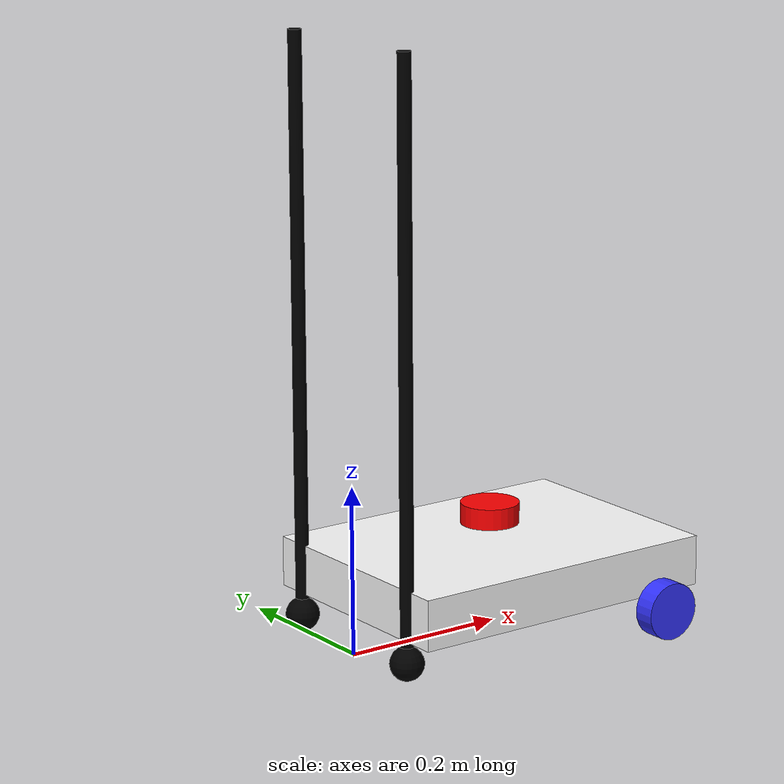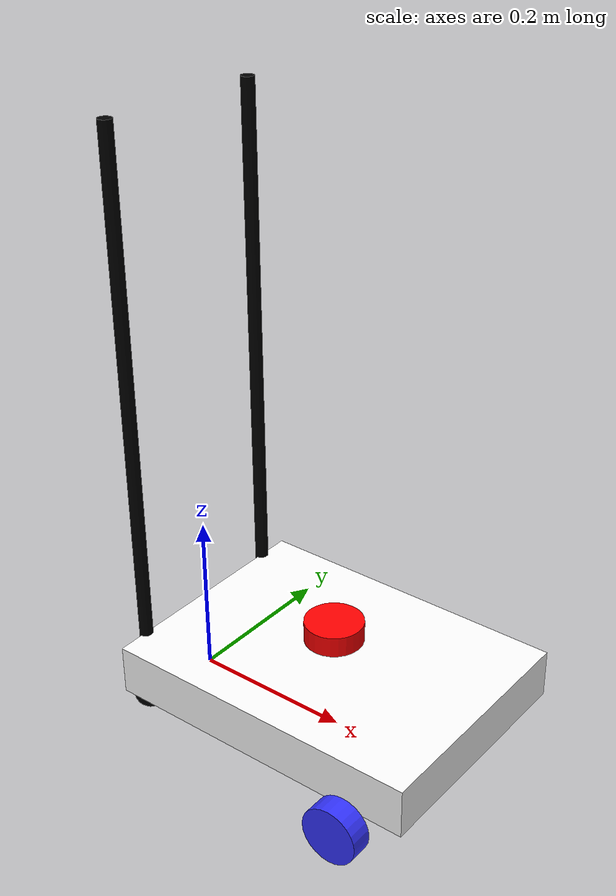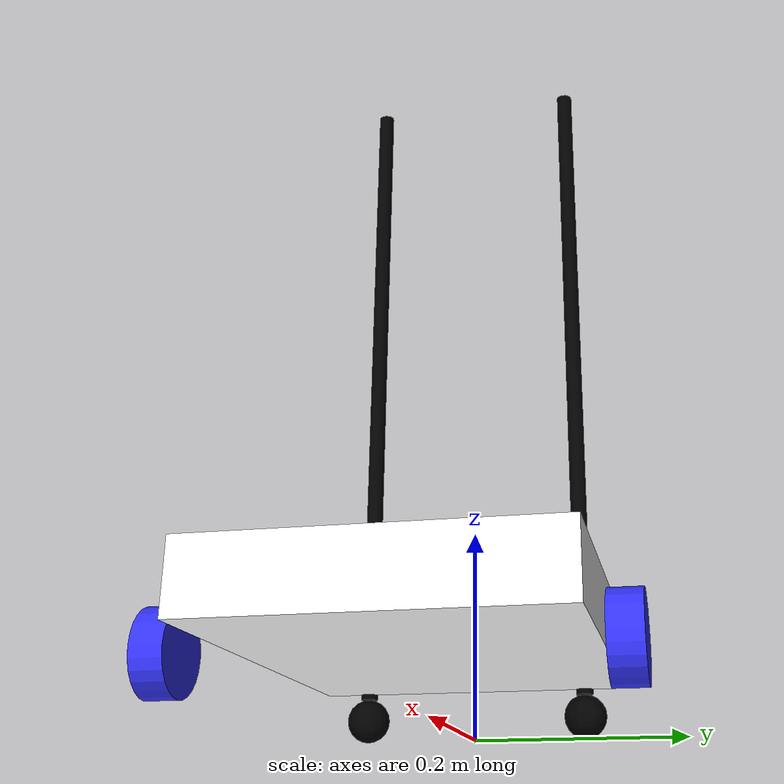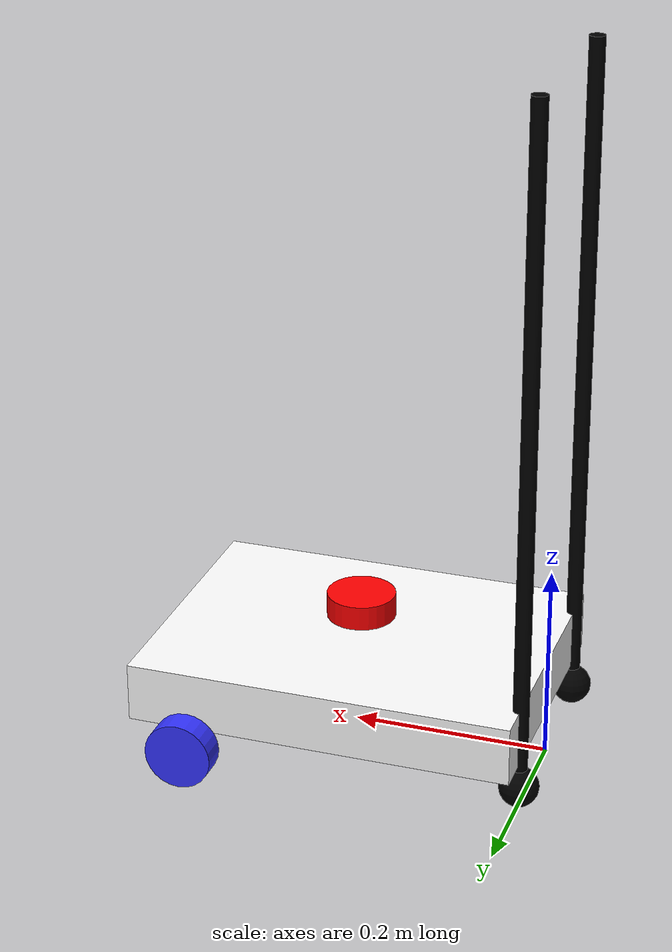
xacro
<?xml version="1.0"?>
<robot xmlns:xacro="http://www.ros.org/wiki/xacro">

    <xacro:include filename="inertial_macros.xacro"/>

    <!-- VISUAL COLORS -->

    <material name="white">
        <color rgba="1 1 1 1"/>
    </material>

    <material name="orange">
        <color rgba="1 0.3 0.1 1"/>
    </material>

    <material name="blue">
        <color rgba="0.2 0.2 1 1"/>
    </material>

    <material name="black">
        <color rgba="0 0 0 1"/>
    </material>

    <material name="red">
        <color rgba="1 0 0 1"/>
    </material>

    <!-- BASE LINK -->

    <link name="base_link"></link>

    <joint name="base_footprint_joint" type="fixed">
        <parent link="base_link"/>
        <child link="base_footprint"/>
        <origin xyz="0 0 0" rpy="0 0 0"/>
    </joint>

    <link name="base_footprint"></link>

    <!-- CHASSIS LINK -->

    <joint name="chassis_joint" type="fixed">
        <parent link="base_link"/>
        <child link="chassis_link"/>
        <origin xyz="0.196 0 0.075" rpy="0 0 0"/> <!-- Offset the chassis slightly up by 7.5cm-->
    </joint>

    <link name="chassis_link">
        <visual>
            <origin xyz="0 0 0" rpy="0 0 0"/>
            <geometry>
                <box size="0.392 0.29 0.06"/>
            </geometry>
            <material name="white"/>
        </visual>
        <collision>
            <origin xyz="0 0 0" rpy="0 0 0"/>
            <geometry>
                <box size="0.392 0.29 0.06"/>
            </geometry>
            <material name="white"/>
        </collision>
        <xacro:inertial_box mass="0.5" x="0.392" y="0.29" z="0.06">
            <origin xyz="0 0 0" rpy="0 0 0"/>
        </xacro:inertial_box>
    </link>

    <!-- POLE LINKS -->

    <joint name="left_pole_joint" type="fixed">
        <parent link="base_link"/>
        <child link="left_pole_link"/>
        <origin xyz="0 0.105 0.04" rpy="0 0 0"/>
    </joint>

    <link name="left_pole_link">
        <visual>
            <origin xyz="0 0 0.335" rpy="0 0 0"/>
            <geometry>
                <cylinder length="0.67" radius="0.00795"/>
            </geometry>
            <material name="black"/>
        </visual>
        <collision>
            <origin xyz="0 0 0.335" rpy="0 0 0"/>
            <geometry>
                <cylinder length="0.67" radius="0.00795"/>
            </geometry>
        </collision>
        <xacro:inertial_cylinder mass="0.02" length="0.67" radius="0.00795">
            <origin xyz="0 0 0.335" rpy="0 0 0"/>
        </xacro:inertial_cylinder>
    </link>

    <joint name="right_pole_joint" type="fixed">
        <parent link="base_link"/>
        <child link="right_pole_link"/>
        <origin xyz="0 -0.105 0.04" rpy="0 0 0"/>
    </joint>

    <link name="right_pole_link">
        <visual>
            <origin xyz="0 0 0.335" rpy="0 0 0"/>
            <geometry>
                <cylinder length="0.67" radius="0.00795"/>
            </geometry>
            <material name="black"/>
        </visual>
        <collision>
            <origin xyz="0 0 0.335" rpy="0 0 0"/>
            <geometry>
                <cylinder length="0.67" radius="0.00795"/>
            </geometry>
        </collision>
        <xacro:inertial_cylinder mass="0.02" length="0.67" radius="0.00795">
            <origin xyz="0 0 0.335" rpy="0 0 0"/>
        </xacro:inertial_cylinder>
    </link>

    <!-- MOTOR WHEEL LINKS -->

    <joint name="left_wheel_joint" type="continuous">
        <parent link="base_link"/>
        <child link="left_wheel_link"/>
        <origin xyz="0.326 0.1685 0.034" rpy="0 0 0"/> <!-- Rotate wheel -->
        <axis xyz="0 1 0"/>
    </joint>

    <link name="left_wheel_link">
        <visual>
            <origin rpy="1.57079632679 0 0"/>
            <geometry>
                <cylinder radius="0.034" length="0.026"/>
            </geometry>
            <material name="blue"/>
        </visual>
        <collision>
            <origin rpy="1.57079632679 0 0"/>
            <geometry>
                <cylinder radius="0.034" length="0.026"/>
            </geometry>
        </collision>
        <xacro:inertial_cylinder mass="0.02" radius="0.034" length="0.026">
            <origin xyz="0 0 0" rpy="0 0 0"/>
        </xacro:inertial_cylinder>
    </link>

    <joint name="right_wheel_joint" type="continuous">
        <parent link="base_link"/>
        <child link="right_wheel_link"/>
        <origin xyz="0.326 -0.1685 0.034" rpy="0 0 0"/> <!-- Rotate wheel -->
        <axis xyz="0 1 0"/>
    </joint>

    <link name="right_wheel_link">
        <visual>
            <origin rpy="1.57079632679 0 0"/>
            <geometry>
                <cylinder radius="0.034" length="0.026"/>
            </geometry>
            <material name="blue"/>
        </visual>
        <collision>
            <origin rpy="1.57079632679 0 0"/>
            <geometry>
                <cylinder radius="0.034" length="0.026"/>
            </geometry>
        </collision>
        <xacro:inertial_cylinder mass="0.02" radius="0.034" length="0.026">
            <origin xyz="0 0 0" rpy="0 0 0"/>
        </xacro:inertial_cylinder>
    </link>

    <!-- CASTER WHEELS LINK -->

    <joint name="caster_left_wheel_joint" type="fixed">
        <parent link="base_link"/>
        <child link="caster_left_wheel_link"/>
        <origin xyz="0 0.105 0.02" rpy="0 0 0"/>
    </joint>

    <link name="caster_left_wheel_link">
        <visual>
            <geometry>
                <sphere radius="0.02"/>
            </geometry>
            <material name="black"/>
        </visual>
        <collision>
            <geometry>
                <sphere radius="0.02"/>
            </geometry>
        </collision>
        <xacro:inertial_sphere mass="0.1" radius="0.02">
            <origin xyz="0 0 0" rpy="0 0 0"/>
        </xacro:inertial_sphere>
    </link>

    <joint name="caster_right_wheel_joint" type="fixed">
        <parent link="base_link"/>
        <child link="caster_right_wheel_link"/>
        <origin xyz="0 -0.105 0.02" rpy="0 0 0"/>
    </joint>

    <link name="caster_right_wheel_link">
        <visual>
            <geometry>
                <sphere radius="0.02"/>
            </geometry>
            <material name="black"/>
        </visual>
        <collision>
            <geometry>
                <sphere radius="0.02"/>
            </geometry>
        </collision>
        <xacro:inertial_sphere mass="0.1" radius="0.02">
            <origin xyz="0 0 0" rpy="0 0 0"/>
        </xacro:inertial_sphere>
    </link>

    <!-- LIDAR LINK -->

    <joint name="lidar_joint" type="fixed">
        <parent link="base_link"/>
        <child link="lidar_link"/>
        <origin xyz="0.196 0 0.135" rpy="0 0 0"/>
    </joint>

    <link name="lidar_link">
        <visual>
            <geometry>
                <cylinder radius="0.035" length="0.025"/>
            </geometry>
            <material name="red"/>
        </visual>
        <xacro:inertial_cylinder mass="0.140" length="0.025" radius="0.035">
            <origin xyz="0 0 0" rpy="0 0 0"/>
        </xacro:inertial_cylinder>
    </link>

    <!-- GAZEBO FRICTION -->

    <gazebo reference="left_wheel_link">
        <mu1>1.0</mu1>      <!-- longitudinal friction -->
        <mu2>1.0</mu2>      <!-- lateral friction -->
        <kp>1000000.0</kp>  <!-- contact stiffness -->
        <kd>1.0</kd>        <!-- damping -->
    </gazebo>

    <gazebo reference="right_wheel_link">
        <mu1>1.0</mu1>
        <mu2>1.0</mu2>
        <kp>1000000.0</kp>
        <kd>1.0</kd>
    </gazebo>

    <gazebo reference="caster_left_wheel_link">
        <mu1>0.001</mu1>
        <mu2>0.001</mu2>
        <kp>1000000.0</kp>
        <kd>1.0</kd>
    </gazebo>

    <gazebo reference="caster_right_wheel_link">
        <mu1>0.001</mu1>
        <mu2>0.001</mu2>
        <kp>1000000.0</kp>
        <kd>1.0</kd>
    </gazebo>

    <!-- GAZEBO PLUGINS -->

    <plugin filename="gz-sim-sensors-system" name="gz::sim::systems::Sensors">
      <render_engine>ogre2</render_engine>
    </plugin>

    <gazebo>
        <plugin filename="gz_ros2_control-system" name="gz_ros2_control::GazeboSimROS2ControlPlugin">
            <parameters>$(find chassis)/config/my_controllers.yaml</parameters>
        </plugin>
    </gazebo>

    <!-- GAZEBO LIDAR REFERENCE -->

    <gazebo reference="lidar_link">
        <sensor name="lidar_sensor" type="gpu_lidar">
            <pose>0 0 0 0 0 0</pose>

            <always_on>true</always_on>
            <update_rate>10</update_rate>
            <visualize>true</visualize>

            <ray>
                <scan>
                    <horizontal>
                    <samples>360</samples>
                    <resolution>1</resolution>
                    <min_angle>-3.14159</min_angle>
                    <max_angle>3.14159</max_angle>
                    </horizontal>
                </scan>

                <range>
                    <min>0.3</min>
                    <max>12.0</max>
                </range>
            </ray>
        </sensor>
    </gazebo>

    <!-- ROS CONTROL -->

    <ros2_control name="GazeboSimSystem" type="system">
        <hardware>
            <plugin>gz_ros2_control/GazeboSimSystem</plugin>
        </hardware>
        <joint name="left_wheel_joint">
            <command_interface name="velocity">
                <param name="min">-1</param>
                <param name="max">1</param>
            </command_interface>
            <state_interface name="velocity"/>
            <state_interface name="position"/>
        </joint>
        <joint name="right_wheel_joint">
            <command_interface name="velocity">
                <param name="min">-1</param>
                <param name="max">1</param>
            </command_interface>
            <state_interface name="velocity"/>
            <state_interface name="position"/>
        </joint>
    </ros2_control>

</robot>
